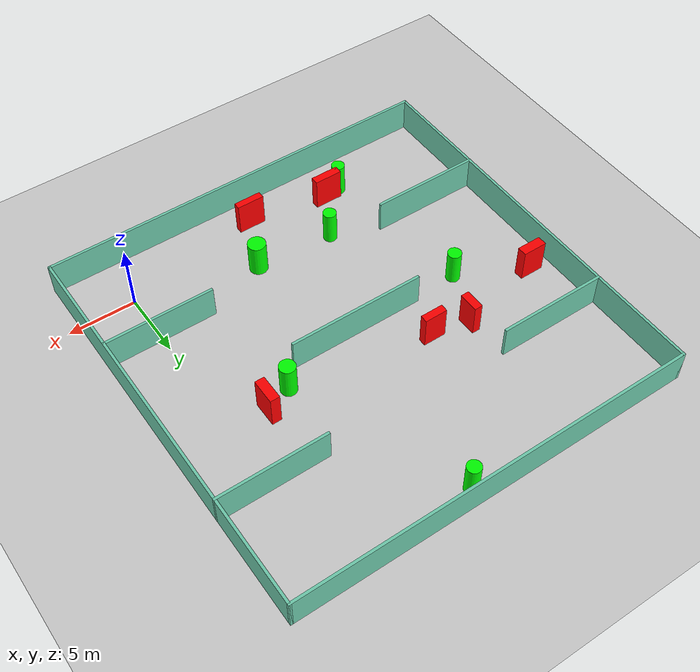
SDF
<sdf version="1.7">
 <world name="default">
  <light name="sun" type="directional">
   <pose>0 0 10 0 -0 0</pose>
   <diffuse>0.8 0.8 0.8 1</diffuse>
   <specular>0.2 0.2 0.2 1</specular>
   <attenuation>
    <range>1000</range>
    <constant>0.9</constant>
    <linear>0.01</linear>
    <quadratic>0.001</quadratic>
   </attenuation>
   <direction>-0.5 0.1 -0.9</direction>
   <spot><inner_angle>0</inner_angle><outer_angle>0</outer_angle><falloff>0</falloff></spot>
  </light>
  <model name="ground_plane">
   <static>1</static>
   <link name="link">
    <collision name="collision">
     <geometry><plane><normal>0 0 1</normal><size>100 100</size></plane></geometry>
     <surface>
      <contact><collide_bitmask>65535</collide_bitmask></contact>
      <friction><ode><mu>100</mu><mu2>50</mu2></ode></friction>
     </surface>
    </collision>
    <visual name="visual">
     <cast_shadows>0</cast_shadows>
     <geometry><plane><normal>0 0 1</normal><size>100 100</size></plane></geometry>
     <material>
      <script><uri>file://media/materials/scripts/gazebo.material</uri><name>Gazebo/Grey</name></script>
     </material>
    </visual>
   </link>
  </model>
  <gravity>0 0 -9.8</gravity>
  <magnetic_field>6e-06 2.3e-05 -4.2e-05</magnetic_field>
  <atmosphere type="adiabatic"/>
  <physics type="ode">
   <max_step_size>0.001</max_step_size>
   <real_time_factor>1</real_time_factor>
   <real_time_update_rate>1000</real_time_update_rate>
  </physics>
  <scene><ambient>0.4 0.4 0.4 1</ambient><background>0.7 0.7 0.7 1</background><shadows>1</shadows></scene>
  <spherical_coordinates>
   <surface_model>EARTH_WGS84</surface_model>
   <latitude_deg>0</latitude_deg>
   <longitude_deg>0</longitude_deg>
   <elevation>0</elevation>
   <heading_deg>0</heading_deg>
  </spherical_coordinates>
  <model name="my_base_walls">
   <link name="Wall_10">
    <collision name="Wall_10_Collision">
     <geometry><box><size>8.2 0.2 2.5</size></box></geometry>
     <pose>0 0 1.25 0 -0 0</pose>
    </collision>
    <visual name="Wall_10_Visual">
     <pose>0 0 1.25 0 -0 0</pose>
     <geometry><box><size>8.2 0.2 2.5</size></box></geometry>
     <material>
      <script><uri>file://media/materials/scripts/gazebo.material</uri><name>Gazebo/Grey</name></script>
      <ambient>0.435294 0.796078 0.67451 1</ambient>
     </material>
     <meta><layer>0</layer></meta>
    </visual>
    <pose>-11 -7 0 0 -0 0</pose>
   </link>
   <link name="Wall_12">
    <collision name="Wall_12_Collision">
     <geometry><box><size>8.2 0.2 2.5</size></box></geometry>
     <pose>0 0 1.25 0 -0 0</pose>
    </collision>
    <visual name="Wall_12_Visual">
     <pose>0 0 1.25 0 -0 0</pose>
     <geometry><box><size>8.2 0.2 2.5</size></box></geometry>
     <material>
      <script><uri>file://media/materials/scripts/gazebo.material</uri><name>Gazebo/Grey</name></script>
      <ambient>0.435294 0.796078 0.67451 1</ambient>
     </material>
     <meta><layer>0</layer></meta>
    </visual>
    <pose>-11 7 0 0 -0 0</pose>
   </link>
   <link name="Wall_14">
    <collision name="Wall_14_Collision">
     <geometry><box><size>8.2 0.2 2.5</size></box></geometry>
     <pose>0 0 1.25 0 -0 0</pose>
    </collision>
    <visual name="Wall_14_Visual">
     <pose>0 0 1.25 0 -0 0</pose>
     <geometry><box><size>8.2 0.2 2.5</size></box></geometry>
     <material>
      <script><uri>file://media/materials/scripts/gazebo.material</uri><name>Gazebo/Grey</name></script>
      <ambient>0.435294 0.796078 0.67451 1</ambient>
     </material>
     <meta><layer>0</layer></meta>
    </visual>
    <pose>11 7 0 0 -0 3.14159</pose>
   </link>
   <link name="Wall_16">
    <collision name="Wall_16_Collision">
     <geometry><box><size>10.2 0.2 2.5</size></box></geometry>
     <pose>0 0 1.25 0 -0 0</pose>
    </collision>
    <visual name="Wall_16_Visual">
     <pose>0 0 1.25 0 -0 0</pose>
     <geometry><box><size>10.2 0.2 2.5</size></box></geometry>
     <material>
      <script><uri>file://media/materials/scripts/gazebo.material</uri><name>Gazebo/Grey</name></script>
      <ambient>0.435294 0.796078 0.67451 1</ambient>
     </material>
     <meta><layer>0</layer></meta>
    </visual>
    <pose>0 0 0 0 -0 3.14159</pose>
   </link>
   <link name="Wall_2">
    <collision name="Wall_2_Collision">
     <geometry><box><size>30.2 0.2 2.5</size></box></geometry>
     <pose>0 0 1.25 0 -0 0</pose>
    </collision>
    <visual name="Wall_2_Visual">
     <pose>0 0 1.25 0 -0 0</pose>
     <geometry><box><size>30.2 0.2 2.5</size></box></geometry>
     <material>
      <script><uri>file://media/materials/scripts/gazebo.material</uri><name>Gazebo/Grey</name></script>
      <ambient>0.435294 0.796078 0.67451 1</ambient>
     </material>
     <meta><layer>0</layer></meta>
    </visual>
    <pose>0 -15 0 0 -0 3.14159</pose>
   </link>
   <link name="Wall_3">
    <collision name="Wall_3_Collision">
     <geometry><box><size>30.2 0.2 2.5</size></box></geometry>
     <pose>0 0 1.25 0 -0 0</pose>
    </collision>
    <visual name="Wall_3_Visual">
     <pose>0 0 1.25 0 -0 0</pose>
     <geometry><box><size>30.2 0.2 2.5</size></box></geometry>
     <material>
      <script><uri>file://media/materials/scripts/gazebo.material</uri><name>Gazebo/Grey</name></script>
      <ambient>0.435294 0.796078 0.67451 1</ambient>
     </material>
     <meta><layer>0</layer></meta>
    </visual>
    <pose>-15 0 0 0 -0 1.5708</pose>
   </link>
   <link name="Wall_4">
    <collision name="Wall_4_Collision">
     <geometry><box><size>30.2 0.2 2.5</size></box></geometry>
     <pose>0 0 1.25 0 -0 0</pose>
    </collision>
    <visual name="Wall_4_Visual">
     <pose>0 0 1.25 0 -0 0</pose>
     <geometry><box><size>30.2 0.2 2.5</size></box></geometry>
     <material>
      <script><uri>file://media/materials/scripts/gazebo.material</uri><name>Gazebo/Grey</name></script>
      <ambient>0.435294 0.796078 0.67451 1</ambient>
     </material>
     <meta><layer>0</layer></meta>
    </visual>
    <pose>0 15 0 0 -0 0</pose>
   </link>
   <link name="Wall_6">
    <collision name="Wall_6_Collision">
     <geometry><box><size>30.2 0.2 2.5</size></box></geometry>
     <pose>0 0 1.25 0 -0 0</pose>
    </collision>
    <visual name="Wall_6_Visual">
     <pose>0 0 1.25 0 -0 0</pose>
     <geometry><box><size>30.2 0.2 2.5</size></box></geometry>
     <material>
      <script><uri>file://media/materials/scripts/gazebo.material</uri><name>Gazebo/Grey</name></script>
      <ambient>0.435294 0.796078 0.67451 1</ambient>
     </material>
     <meta><layer>0</layer></meta>
    </visual>
    <pose>15 0 0 0 -0 1.5708</pose>
   </link>
   <link name="Wall_8">
    <collision name="Wall_8_Collision">
     <geometry><box><size>8.2 0.2 2.5</size></box></geometry>
     <pose>0 0 1.25 0 -0 0</pose>
    </collision>
    <visual name="Wall_8_Visual">
     <pose>0 0 1.25 0 -0 0</pose>
     <geometry><box><size>8.2 0.2 2.5</size></box></geometry>
     <material>
      <script><uri>file://media/materials/scripts/gazebo.material</uri><name>Gazebo/Grey</name></script>
      <ambient>0.435294 0.796078 0.67451 1</ambient>
     </material>
     <meta><layer>0</layer></meta>
    </visual>
    <pose>11 -7 0 0 -0 3.14159</pose>
   </link>
   <static>1</static>
   <pose>-11 11 0 0 -0 0</pose>
  </model>
  <model name="cylinder1">
   <static>1</static>
   <link name="link">
    <inertial>
     <mass>1</mass>
     <inertia><ixx>0.5</ixx><ixy>0</ixy><ixz>0</ixz><iyy>0.5</iyy><iyz>0</iyz><izz>1</izz></inertia>
    </inertial>
    <collision name="collision">
     <geometry><cylinder><radius>0.5868156699655578</radius><length>2.5</length></cylinder></geometry>
    </collision>
    <visual name="visual">
     <geometry><cylinder><radius>0.5868156699655578</radius><length>2.5</length></cylinder></geometry>
     <material>
      <ambient>0 1 0 1</ambient>
      <diffuse>0 1 0 1</diffuse>
      <specular>0.1 0.1 0.1 1</specular>
      <emissive>0 0 0 0</emissive>
     </material>
    </visual>
   </link>
   <pose>-4.696160462609555 12.316227482469486 1.25 0 0 0</pose>
  </model>
  <model name="cylinder2">
   <static>1</static>
   <link name="link">
    <inertial>
     <mass>1</mass>
     <inertia><ixx>0.5</ixx><ixy>0</ixy><ixz>0</ixz><iyy>0.5</iyy><iyz>0</iyz><izz>1</izz></inertia>
    </inertial>
    <collision name="collision">
     <geometry><cylinder><radius>0.491283666836389</radius><length>2.5</length></cylinder></geometry>
    </collision>
    <visual name="visual">
     <geometry><cylinder><radius>0.491283666836389</radius><length>2.5</length></cylinder></geometry>
     <material>
      <ambient>0 1 0 1</ambient>
      <diffuse>0 1 0 1</diffuse>
      <specular>0.1 0.1 0.1 1</specular>
      <emissive>0 0 0 0</emissive>
     </material>
    </visual>
   </link>
   <pose>-17.731146126974515 -1.0596418733060067 1.25 0 0 0</pose>
  </model>
  <model name="cylinder3">
   <static>1</static>
   <link name="link">
    <inertial>
     <mass>1</mass>
     <inertia><ixx>0.5</ixx><ixy>0</ixy><ixz>0</ixz><iyy>0.5</iyy><iyz>0</iyz><izz>1</izz></inertia>
    </inertial>
    <collision name="collision">
     <geometry><cylinder><radius>0.6650645509488203</radius><length>2.5</length></cylinder></geometry>
    </collision>
    <visual name="visual">
     <geometry><cylinder><radius>0.6650645509488203</radius><length>2.5</length></cylinder></geometry>
     <material>
      <ambient>0 1 0 1</ambient>
      <diffuse>0 1 0 1</diffuse>
      <specular>0.1 0.1 0.1 1</specular>
      <emissive>0 0 0 0</emissive>
     </material>
    </visual>
   </link>
   <pose>-8.704207212924699 2.182299655467066 1.25 0 0 0</pose>
  </model>
  <model name="cylinder4">
   <static>1</static>
   <link name="link">
    <inertial>
     <mass>1</mass>
     <inertia><ixx>0.5</ixx><ixy>0</ixy><ixz>0</ixz><iyy>0.5</iyy><iyz>0</iyz><izz>1</izz></inertia>
    </inertial>
    <collision name="collision">
     <geometry><cylinder><radius>0.5062734802017178</radius><length>2.5</length></cylinder></geometry>
    </collision>
    <visual name="visual">
     <geometry><cylinder><radius>0.5062734802017178</radius><length>2.5</length></cylinder></geometry>
     <material>
      <ambient>0 1 0 1</ambient>
      <diffuse>0 1 0 1</diffuse>
      <specular>0.1 0.1 0.1 1</specular>
      <emissive>0 0 0 0</emissive>
     </material>
    </visual>
   </link>
   <pose>-9.765141645755648 24.933198481463855 1.25 0 0 0</pose>
  </model>
  <model name="cylinder5">
   <static>1</static>
   <link name="link">
    <inertial>
     <mass>1</mass>
     <inertia><ixx>0.5</ixx><ixy>0</ixy><ixz>0</ixz><iyy>0.5</iyy><iyz>0</iyz><izz>1</izz></inertia>
    </inertial>
    <collision name="collision">
     <geometry><cylinder><radius>0.5041424103865627</radius><length>2.5</length></cylinder></geometry>
    </collision>
    <visual name="visual">
     <geometry><cylinder><radius>0.5041424103865627</radius><length>2.5</length></cylinder></geometry>
     <material>
      <ambient>0 1 0 1</ambient>
      <diffuse>0 1 0 1</diffuse>
      <specular>0.1 0.1 0.1 1</specular>
      <emissive>0 0 0 0</emissive>
     </material>
    </visual>
   </link>
   <pose>-19.391975492183835 10.724491072392844 1.25 0 0 0</pose>
  </model>
  <model name="cylinder6">
   <static>1</static>
   <link name="link">
    <inertial>
     <mass>1</mass>
     <inertia><ixx>0.5</ixx><ixy>0</ixy><ixz>0</ixz><iyy>0.5</iyy><iyz>0</iyz><izz>1</izz></inertia>
    </inertial>
    <collision name="collision">
     <geometry><cylinder><radius>0.49367168041065296</radius><length>2.5</length></cylinder></geometry>
    </collision>
    <visual name="visual">
     <geometry><cylinder><radius>0.49367168041065296</radius><length>2.5</length></cylinder></geometry>
     <material>
      <ambient>0 1 0 1</ambient>
      <diffuse>0 1 0 1</diffuse>
      <specular>0.1 0.1 0.1 1</specular>
      <emissive>0 0 0 0</emissive>
     </material>
    </visual>
   </link>
   <pose>-14.506101852247221 2.6211415947405836 1.25 0 0 0</pose>
  </model>
  <model name="box1">
   <static>1</static>
   <link name="link">
    <inertial>
     <mass>1</mass>
     <inertia><ixx>0.083</ixx><ixy>0</ixy><ixz>0</ixz><iyy>0.083</iyy><iyz>0</iyz><izz>0.083</izz></inertia>
    </inertial>
    <collision name="collision">
     <geometry><box><size>0.7094896721860643 1.8646514824695875 2.5</size></box></geometry>
    </collision>
    <visual name="visual">
     <geometry><box><size>0.7094896721860643 1.8646514824695875 2.5</size></box></geometry>
     <material>
      <ambient>1 0 0 1</ambient>
      <diffuse>1 0 0 1</diffuse>
      <specular>0.1 0.1 0.1 1</specular>
      <emissive>0 0 0 0</emissive>
     </material>
    </visual>
    <sensor name="my_contact" type="contact">
     <contact><collision>box_collision</collision><topic>__default_topic__</topic></contact>
    </sensor>
   </link>
   <pose>-2.693058118761545 13.111306189202782 1.25 0 0 0</pose>
  </model>
  <model name="box2">
   <static>1</static>
   <link name="link">
    <inertial>
     <mass>1</mass>
     <inertia><ixx>0.083</ixx><ixy>0</ixy><ixz>0</ixz><iyy>0.083</iyy><iyz>0</iyz><izz>0.083</izz></inertia>
    </inertial>
    <collision name="collision">
     <geometry><box><size>1.7024882233986127 0.5669025626864923 2.5</size></box></geometry>
    </collision>
    <visual name="visual">
     <geometry><box><size>1.7024882233986127 0.5669025626864923 2.5</size></box></geometry>
     <material>
      <ambient>1 0 0 1</ambient>
      <diffuse>1 0 0 1</diffuse>
      <specular>0.1 0.1 0.1 1</specular>
      <emissive>0 0 0 0</emissive>
     </material>
    </visual>
    <sensor name="my_contact" type="contact">
     <contact><collision>box_collision</collision><topic>__default_topic__</topic></contact>
    </sensor>
   </link>
   <pose>-14.958621432364454 14.188018884706757 1.25 0 0 0</pose>
  </model>
  <model name="box3">
   <static>1</static>
   <link name="link">
    <inertial>
     <mass>1</mass>
     <inertia><ixx>0.083</ixx><ixy>0</ixy><ixz>0</ixz><iyy>0.083</iyy><iyz>0</iyz><izz>0.083</izz></inertia>
    </inertial>
    <collision name="collision">
     <geometry><box><size>2.063513658279704 0.5149542135629617 2.5</size></box></geometry>
    </collision>
    <visual name="visual">
     <geometry><box><size>2.063513658279704 0.5149542135629617 2.5</size></box></geometry>
     <material>
      <ambient>1 0 0 1</ambient>
      <diffuse>1 0 0 1</diffuse>
      <specular>0.1 0.1 0.1 1</specular>
      <emissive>0 0 0 0</emissive>
     </material>
    </visual>
    <sensor name="my_contact" type="contact">
     <contact><collision>box_collision</collision><topic>__default_topic__</topic></contact>
    </sensor>
   </link>
   <pose>-10.47649890378037 -1.719796082335872 1.25 0 0 0</pose>
  </model>
  <model name="box4">
   <static>1</static>
   <link name="link">
    <inertial>
     <mass>1</mass>
     <inertia><ixx>0.083</ixx><ixy>0</ixy><ixz>0</ixz><iyy>0.083</iyy><iyz>0</iyz><izz>0.083</izz></inertia>
    </inertial>
    <collision name="collision">
     <geometry><box><size>1.8285407513347374 0.7206762222578167 2.5</size></box></geometry>
    </collision>
    <visual name="visual">
     <geometry><box><size>1.8285407513347374 0.7206762222578167 2.5</size></box></geometry>
     <material>
      <ambient>1 0 0 1</ambient>
      <diffuse>1 0 0 1</diffuse>
      <specular>0.1 0.1 0.1 1</specular>
      <emissive>0 0 0 0</emissive>
     </material>
    </visual>
    <sensor name="my_contact" type="contact">
     <contact><collision>box_collision</collision><topic>__default_topic__</topic></contact>
    </sensor>
   </link>
   <pose>-24.170041798222368 13.2642382452112 1.25 0 0 0</pose>
  </model>
  <model name="box5">
   <static>1</static>
   <link name="link">
    <inertial>
     <mass>1</mass>
     <inertia><ixx>0.083</ixx><ixy>0</ixy><ixz>0</ixz><iyy>0.083</iyy><iyz>0</iyz><izz>0.083</izz></inertia>
    </inertial>
    <collision name="collision">
     <geometry><box><size>2.095775622119918 0.5987754345557265 2.5</size></box></geometry>
    </collision>
    <visual name="visual">
     <geometry><box><size>2.095775622119918 0.5987754345557265 2.5</size></box></geometry>
     <material>
      <ambient>1 0 0 1</ambient>
      <diffuse>1 0 0 1</diffuse>
      <specular>0.1 0.1 0.1 1</specular>
      <emissive>0 0 0 0</emissive>
     </material>
    </visual>
    <sensor name="my_contact" type="contact">
     <contact><collision>box_collision</collision><topic>__default_topic__</topic></contact>
    </sensor>
   </link>
   <pose>-16.460212573653294 -0.6997849275547954 1.25 0 0 0</pose>
  </model>
  <model name="box6">
   <static>1</static>
   <link name="link">
    <inertial>
     <mass>1</mass>
     <inertia><ixx>0.083</ixx><ixy>0</ixy><ixz>0</ixz><iyy>0.083</iyy><iyz>0</iyz><izz>0.083</izz></inertia>
    </inertial>
    <collision name="collision">
     <geometry><box><size>0.5993472346220047 1.4907774507529103 2.5</size></box></geometry>
    </collision>
    <visual name="visual">
     <geometry><box><size>0.5993472346220047 1.4907774507529103 2.5</size></box></geometry>
     <material>
      <ambient>1 0 0 1</ambient>
      <diffuse>1 0 0 1</diffuse>
      <specular>0.1 0.1 0.1 1</specular>
      <emissive>0 0 0 0</emissive>
     </material>
    </visual>
    <sensor name="my_contact" type="contact">
     <contact><collision>box_collision</collision><topic>__default_topic__</topic></contact>
    </sensor>
   </link>
   <pose>-17.67834366215667 14.754266034336112 1.25 0 0 0</pose>
  </model>
 </world>
</sdf>
